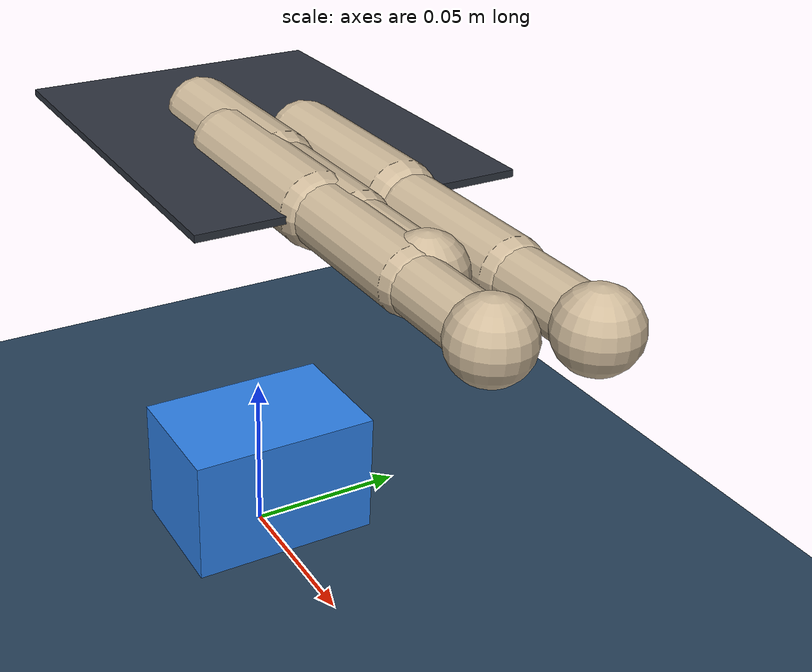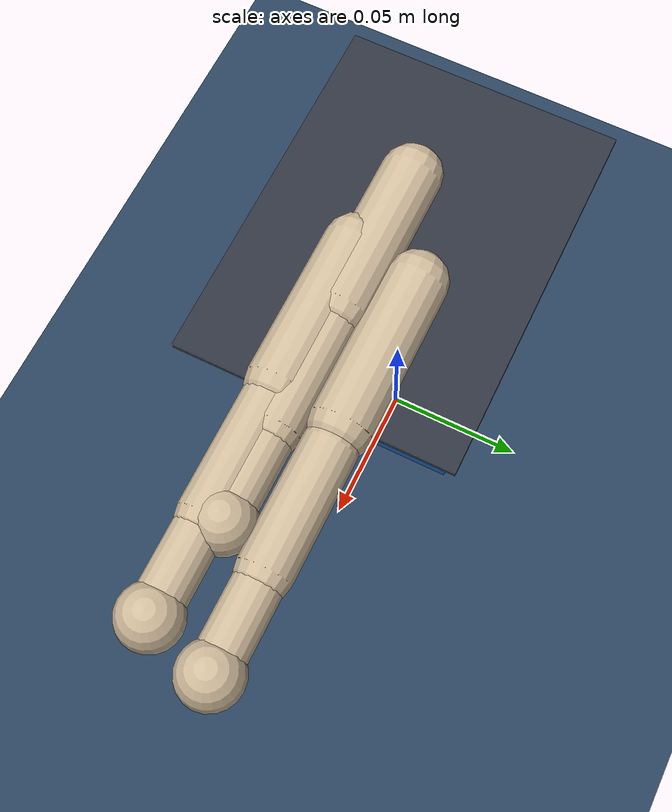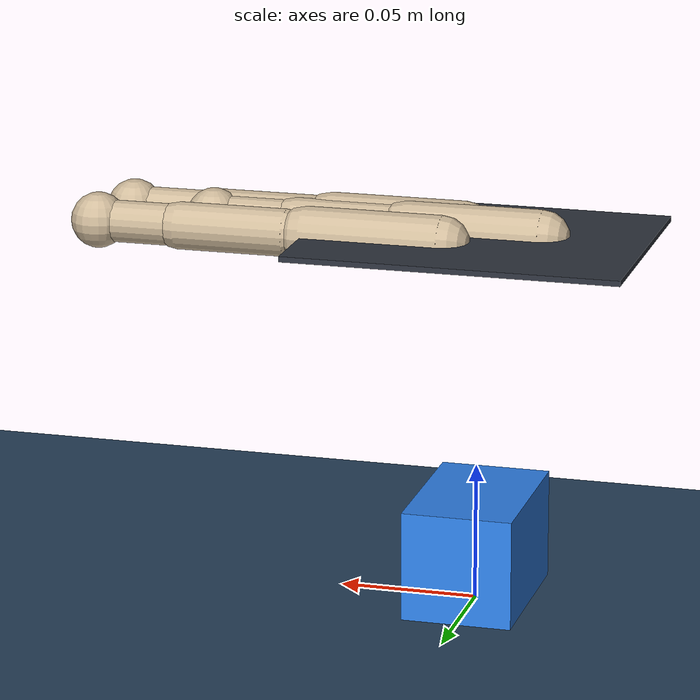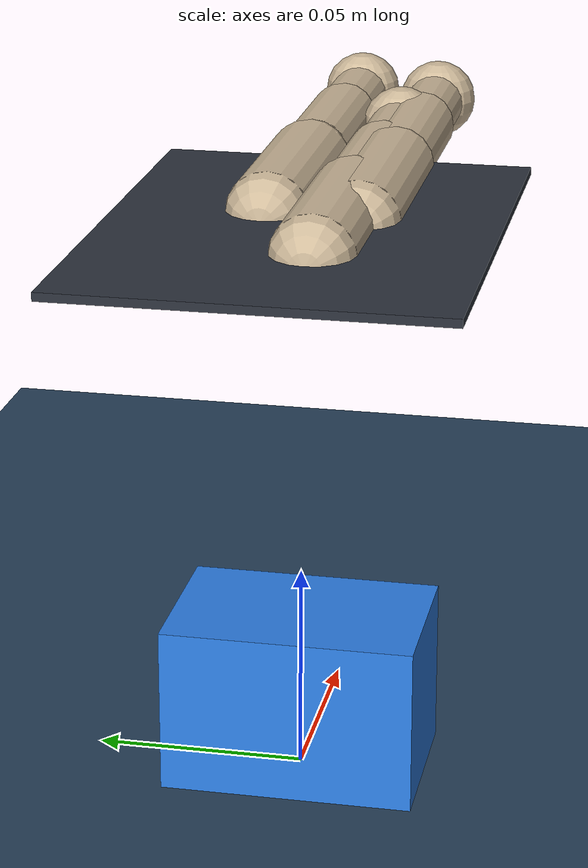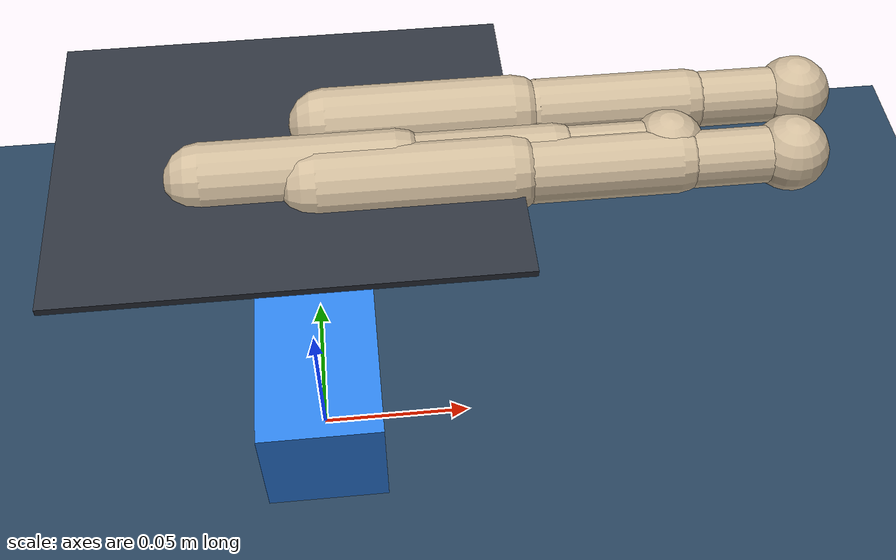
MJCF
<mujoco model="scene_prism2_tp0d0086p0d0213p0d0009_ip0d0108n0d0199p0d0066_mp0d0077p0d0183p0d0034">
  <compiler angle="radian" autolimits="true" />
  <option timestep="0.002" gravity="0 0 -9.81" integrator="implicitfast" />
  <visual>
    <headlight ambient=".4 .4 .4" diffuse=".8 .8 .8" specular="0.1 0.1 0.1" />
    <map znear=".01" />
    <quality shadowsize="2048" />
    <global elevation="-15" />
  </visual>
  <default>
    <geom friction="1.8 0.15 0.01" solref="0.006 1" solimp="0.97 0.995 0.0005" />
    <motor ctrlrange="-1 1" ctrllimited="true" />
    <default class="pose">
      <joint damping="2.0" armature="0.01" />
      <position kp="4000" kv="100" forcerange="-1000 1000" />
    </default>
    <default class="ctrl">
      <joint damping="0.5" armature="0.001" />
      <position kp="30" kv="0.5" gear="1" forcerange="-10 10" ctrlrange="-1 1" />
    </default>
  </default>
  <asset>
    <texture type="skybox" builtin="gradient" rgb1="0.3 0.5 0.7" rgb2="0 0 0" width="512" height="3072" />
    <texture type="2d" name="groundplane" builtin="checker" mark="edge" rgb1="0.2 0.3 0.4" rgb2="0.1 0.2 0.3" markrgb="0.8 0.8 0.8" width="300" height="300" />
    <material name="groundplane" texture="groundplane" texuniform="true" texrepeat="5 5" reflectance="0.2" />
    <texture name="grid" type="2d" builtin="checker" rgb1="0.15 0.15 0.15" rgb2="0.25 0.25 0.25" width="256" height="256" />
    <material name="table_mat" texture="grid" texrepeat="3 3" reflectance="0.2" />
    <material name="palm_mat" rgba="0.18 0.2 0.24 1" />
    <material name="finger_mat" rgba="0.8 0.72 0.6 1" />
    <material name="object_mat" rgba="0.18 0.5 0.9 1" />
  </asset>
  <worldbody>
    <light pos="0 0 1.5" dir="0 0 -1" directional="true" diffuse=".6 .6 .6" specular=".2 .2 .2" />
    <light pos="0.5 0.5 1.0" dir="-1 -1 -1" directional="true" diffuse=".4 .4 .4" specular=".1 .1 .1" />
    <geom name="floor" type="plane" size="1.5 1.5 0.1" material="groundplane" />
    <body name="cube" pos="0.000000 0.000000 0.020000">
      <freejoint />
      <geom type="box" size="0.020000 0.030000 0.020000" density="500" material="object_mat" friction="2.4 0.2 0.02" />
    </body>
    <body gravcomp="1" name="palm_pose" pos="0 0 0.134">
      <joint class="pose" name="palm_px" type="slide" axis="1 0 0" range="-0.20 0.20" />
      <joint class="pose" name="palm_py" type="slide" axis="0 1 0" range="-0.20 0.20" />
      <joint class="pose" name="palm_pz" type="slide" axis="0 0 1" range="-0.15 0.35" />
      <joint class="pose" name="palm_rx" type="hinge" axis="1 0 0" range="-1.57 1.57" />
      <joint class="pose" name="palm_ry" type="hinge" axis="0 1 0" range="-1.57 1.57" />
      <joint class="pose" name="palm_rz" type="hinge" axis="0 0 1" range="-3.14 3.14" />
      <geom type="box" size="0.06 0.045 0.001" material="palm_mat" />
      <body name="thumb_mount" pos="-0.021428 -0.006741 0">
        <inertial pos="0 0 0" mass="0.001" diaginertia="1e-6 1e-6 1e-6" />
        <body name="thumb_yaw_frame">
          <inertial pos="0 0 0" mass="0.001" diaginertia="1e-6 1e-6 1e-6" />
          <joint class="ctrl" name="thumb_yaw" type="hinge" axis="1 0 0" range="-1.1 1.1" />
          <body name="thumb_mcp_frame">
            <joint class="ctrl" name="thumb_mcp" type="hinge" axis="0 1 0" range="0 3.14" />
            <geom type="capsule" fromto="0 0 0 0.05 0 0" size="0.010" material="finger_mat" />
            <body name="thumb_len_frame" pos="0.05088 0 0">
              <geom type="capsule" fromto="0 0 0 0.04 0 0" size="0.0085" material="finger_mat" />
              <body name="thumb_pip_frame" pos="0.04 0 0">
                <joint class="ctrl" name="thumb_pip" type="hinge" axis="0 1 0" range="-1.2 0.5" />
                <geom type="capsule" fromto="0 0 0 0.03 0 0" size="0.0075" material="finger_mat" />
                <body name="thumb_tip" pos="0.03 0 0">
                  <geom type="sphere" size="0.010" material="finger_mat" friction="2.4 0.2 0.02" />
                  <geom type="sphere" pos="0 0.004 0" size="0.005" material="finger_mat" friction="2.4 0.2 0.02" />
                  <geom type="sphere" pos="0 -0.004 0" size="0.005" material="finger_mat" friction="2.4 0.2 0.02" />
                </body>
              </body>
            </body>
          </body>
        </body>
      </body>
      <body name="index_mount" pos="0.010802 0.010078 0">
        <inertial pos="0 0 0" mass="0.001" diaginertia="1e-6 1e-6 1e-6" />
        <body name="index_yaw_frame">
          <inertial pos="0 0 0" mass="0.001" diaginertia="1e-6 1e-6 1e-6" />
          <joint class="ctrl" name="index_yaw" type="hinge" axis="1 0 0" range="-1.1 1.1" />
          <body name="index_mcp_frame">
            <joint class="ctrl" name="index_mcp" type="hinge" axis="0 1 0" range="0 2.5" />
            <geom type="capsule" fromto="0 0 0 0.05 0 0" size="0.010" material="finger_mat" />
            <body name="index_len_frame" pos="0.056613 0 0">
              <geom type="capsule" fromto="0 0 0 0.04 0 0" size="0.0085" material="finger_mat" />
              <body name="index_pip_frame" pos="0.04 0 0">
                <joint class="ctrl" name="index_pip" type="hinge" axis="0 1 0" range="-1.2 1.57" />
                <geom type="capsule" fromto="0 0 0 0.03 0 0" size="0.0075" material="finger_mat" />
                <body name="index_tip" pos="0.03 0 0">
                  <geom type="sphere" size="0.010" material="finger_mat" friction="2.4 0.2 0.02" />
                  <geom type="sphere" pos="0 0.004 0" size="0.005" material="finger_mat" friction="2.4 0.2 0.02" />
                  <geom type="sphere" pos="0 -0.004 0" size="0.005" material="finger_mat" friction="2.4 0.2 0.02" />
                </body>
              </body>
            </body>
          </body>
        </body>
      </body>
      <body name="middle_mount" pos="0.007686 -0.01167 0">
        <inertial pos="0 0 0" mass="0.001" diaginertia="1e-6 1e-6 1e-6" />
        <body name="middle_yaw_frame">
          <inertial pos="0 0 0" mass="0.001" diaginertia="1e-6 1e-6 1e-6" />
          <joint class="ctrl" name="middle_yaw" type="hinge" axis="1 0 0" range="-1.1 1.1" />
          <body name="middle_mcp_frame">
            <joint class="ctrl" name="middle_mcp" type="hinge" axis="0 1 0" range="0 2.5" />
            <geom type="capsule" fromto="0 0 0 0.05 0 0" size="0.010" material="finger_mat" />
            <body name="middle_len_frame" pos="0.053401 0 0">
              <geom type="capsule" fromto="0 0 0 0.04 0 0" size="0.0085" material="finger_mat" />
              <body name="middle_pip_frame" pos="0.04 0 0">
                <joint class="ctrl" name="middle_pip" type="hinge" axis="0 1 0" range="-1.2 1.57" />
                <geom type="capsule" fromto="0 0 0 0.03 0 0" size="0.0075" material="finger_mat" />
                <body name="middle_tip" pos="0.03 0 0">
                  <geom type="sphere" size="0.010" material="finger_mat" friction="2.4 0.2 0.02" />
                  <geom type="sphere" pos="0 0.004 0" size="0.005" material="finger_mat" friction="2.4 0.2 0.02" />
                  <geom type="sphere" pos="0 -0.004 0" size="0.005" material="finger_mat" friction="2.4 0.2 0.02" />
                </body>
              </body>
            </body>
          </body>
        </body>
      </body>
    </body>
  </worldbody>
  <actuator>
    <position class="pose" name="a_palm_px" joint="palm_px" ctrlrange="-0.20 0.20" />
    <position class="pose" name="a_palm_py" joint="palm_py" ctrlrange="-0.20 0.20" />
    <position class="pose" name="a_palm_pz" joint="palm_pz" ctrlrange="-0.15 0.35" />
    <position class="pose" name="a_palm_rx" joint="palm_rx" ctrlrange="-1.57 1.57" />
    <position class="pose" name="a_palm_ry" joint="palm_ry" ctrlrange="-1.57 1.57" />
    <position class="pose" name="a_palm_rz" joint="palm_rz" ctrlrange="-3.14 3.14" />
    <position class="ctrl" name="a_thumb_yaw" joint="thumb_yaw" ctrlrange="-1.1 1.1" />
    <position class="ctrl" name="a_thumb_mcp" joint="thumb_mcp" ctrlrange="0 3.14" />
    <position class="ctrl" name="a_thumb_pip" joint="thumb_pip" ctrlrange="-1.2 0.5" />
    <position class="ctrl" name="a_index_yaw" joint="index_yaw" ctrlrange="-1.1 1.1" />
    <position class="ctrl" name="a_index_mcp" joint="index_mcp" ctrlrange="0 2.5" />
    <position class="ctrl" name="a_index_pip" joint="index_pip" ctrlrange="-1.2 1.57" />
    <position class="ctrl" name="a_middle_yaw" joint="middle_yaw" ctrlrange="-1.1 1.1" />
    <position class="ctrl" name="a_middle_mcp" joint="middle_mcp" ctrlrange="0 2.5" />
    <position class="ctrl" name="a_middle_pip" joint="middle_pip" ctrlrange="-1.2 1.57" />
  </actuator>
  <keyframe>
    <key name="open" qpos="&#10;        0 0 0.02 1 0 0 0 0.02 0 0 0 0 0 0 2 -0.707 0 1.25 1 0 1.25 1&#10;      " ctrl="&#10;        0.02 0 0 0 0 0 0 2 -0.707 0 1.25 1 0 1.25 1&#10;      " />
    <key name="foundational" qpos="&#10;        0.003591318292 -0.002287996554 0.02274672895 0.9947651479 0.005553939591 0.08275520911 -0.05969111798 0.02021180482 0.000383100504 0.0003017214851 4.370637376e-05 -3.02738668e-05 2.734299547e-05 0.01521073666 2.002332683 -1.095839207 -0.1106005985 1.384726081 0.9039576081 -0.08817485841 1.354582344 0.9355946601&#10;      " ctrl="&#10;        0.02 0 0 0 0 0 -0.005529476116 1.281415796 -1.157051045 -0.1522977698 1.579522667 0.9476579007 -0.03774779371 1.515437265 0.9705674185&#10;      " />
  </keyframe>
</mujoco>
